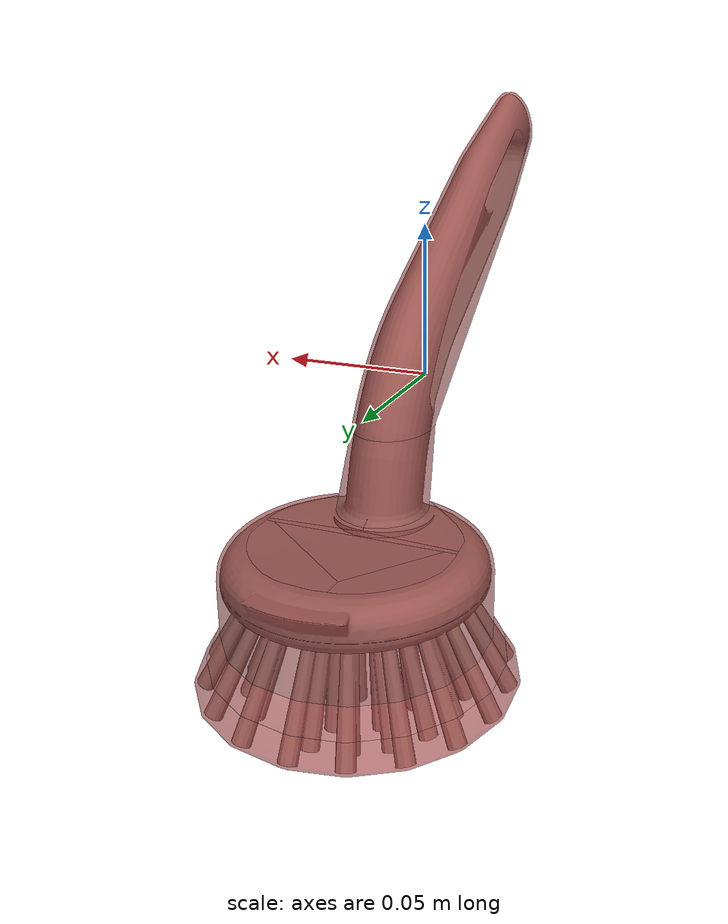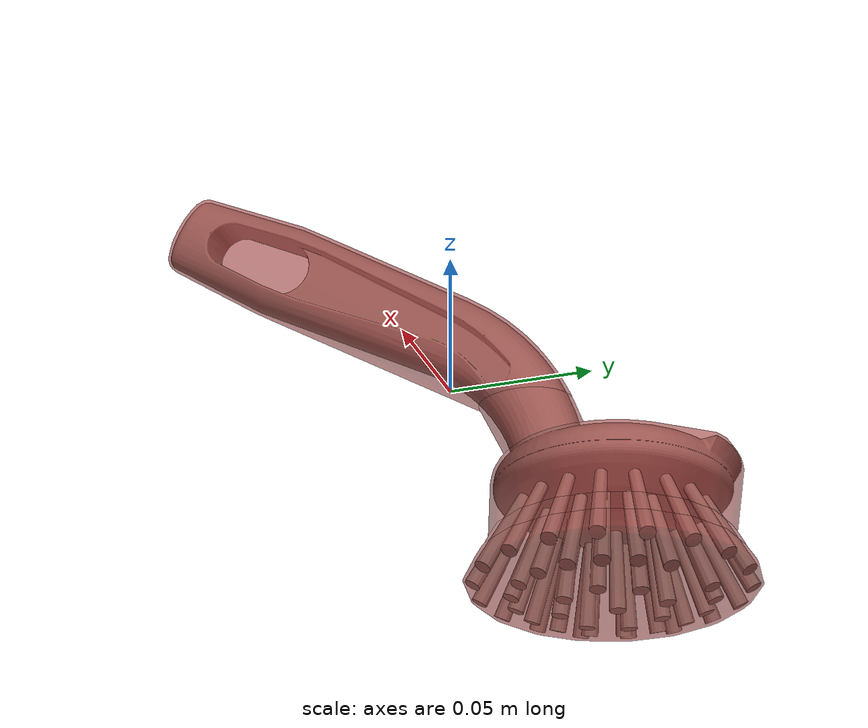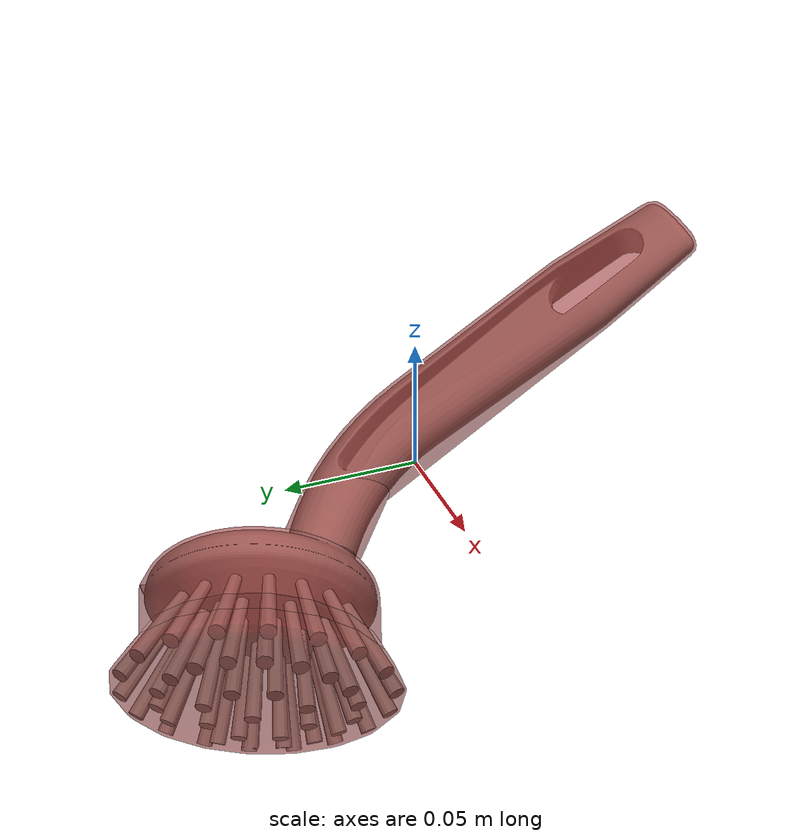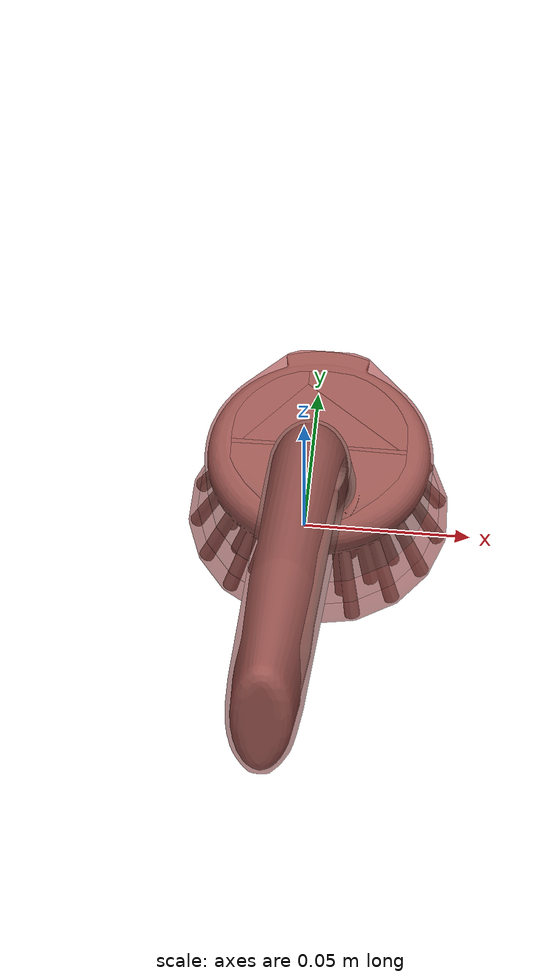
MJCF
<mujoco model="model">
  <option timestep="0.002" gravity="0.0 0.0 -9.81"/>
  <compiler angle="radian"/>
  <asset>
    <mesh file="visual/DishBrush010.obj" name="DishBrush010_vis"/>
    <texture file="visual/T_BC001.png" name="DishBrush010_material" type="2d"/>
    <material name="DishBrush010_material" rgba="1 1 1 1.0" texture="DishBrush010_material" shininess="0.0" specular="0.33333333333333337"/>
    <mesh file="collision/collision_mesh_collision_0.obj" name="DishBrush010_collision_mesh_0"/>
    <mesh file="collision/collision_mesh_collision_1.obj" name="DishBrush010_collision_mesh_1"/>
    <mesh file="collision/collision_mesh_collision_2.obj" name="DishBrush010_collision_mesh_2"/>
    <mesh file="collision/collision_mesh_collision_3.obj" name="DishBrush010_collision_mesh_3"/>
    <mesh file="collision/collision_mesh_collision_4.obj" name="DishBrush010_collision_mesh_4"/>
    <mesh file="collision/collision_mesh_collision_5.obj" name="DishBrush010_collision_mesh_5"/>
    <mesh file="collision/collision_mesh_collision_6.obj" name="DishBrush010_collision_mesh_6"/>
    <mesh file="collision/collision_mesh_collision_7.obj" name="DishBrush010_collision_mesh_7"/>
    <mesh file="collision/collision_mesh_collision_8.obj" name="DishBrush010_collision_mesh_8"/>
  </asset>
  <default>
    <default class="visual">
      <geom conaffinity="0" contype="0" group="1" type="mesh"/>
    </default>
    <default class="collision">
      <geom group="0" rgba="0.5 0 0 0.5" density="1.0" solref="0.004 1" solimp="0.998 0.998 0.001"/>
    </default>
    <default class="spawn">
      <geom group="0" rgba="1 1 1 0.5" contype="0" conaffinity="0"/>
      <site group="0" rgba="1 1 1 0.5"/>
    </default>
    <default class="region">
      <geom group="1" conaffinity="0" contype="0" rgba="0 1 0 0" mass="0"/>
    </default>
  </default>
  <worldbody>
    <body>
      <body name="object">
        <geom mesh="DishBrush010_vis" type="mesh" solimp="0.998 0.998 0.001" solref="0.001 1" friction="0.95 0.3 0.1" class="visual" material="DishBrush010_material"/>
        <geom class="region" name="reg_bbox" type="box" pos="-2.0064999999999666e-05 -0.0001682350000000027 -0.00016597999999999613" size="0.048376535 0.105040705 0.08828788"/>
        <geom mesh="DishBrush010_collision_mesh_0" type="mesh" class="collision"/>
        <geom mesh="DishBrush010_collision_mesh_1" type="mesh" class="collision"/>
        <geom mesh="DishBrush010_collision_mesh_2" type="mesh" class="collision"/>
        <geom mesh="DishBrush010_collision_mesh_3" type="mesh" class="collision"/>
        <geom mesh="DishBrush010_collision_mesh_4" type="mesh" class="collision"/>
        <geom mesh="DishBrush010_collision_mesh_5" type="mesh" class="collision"/>
        <geom mesh="DishBrush010_collision_mesh_6" type="mesh" class="collision"/>
        <geom mesh="DishBrush010_collision_mesh_7" type="mesh" class="collision"/>
        <geom mesh="DishBrush010_collision_mesh_8" type="mesh" class="collision"/>
      </body>
    </body>
  </worldbody>
  <actuator/>
</mujoco>
